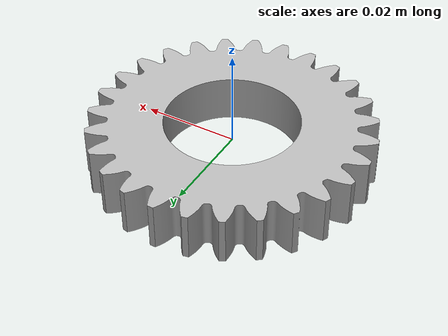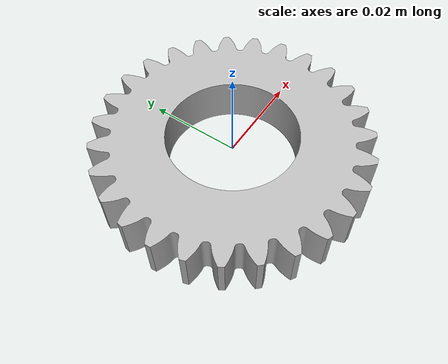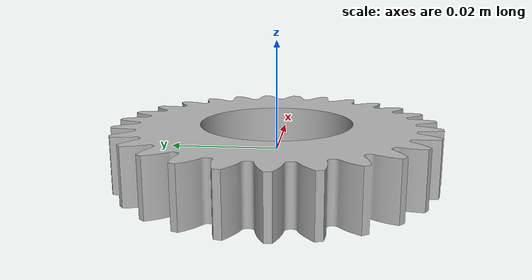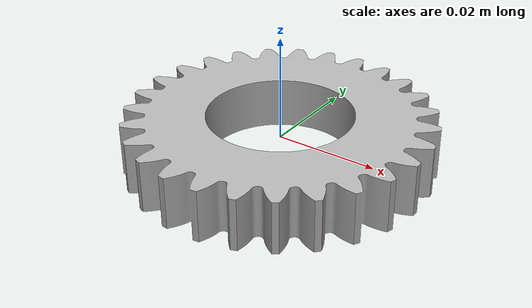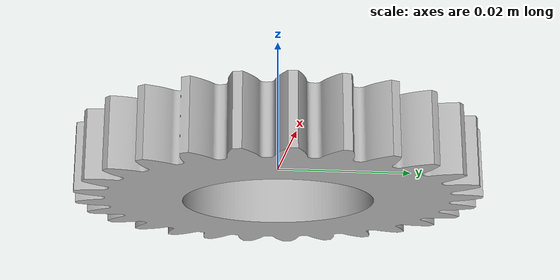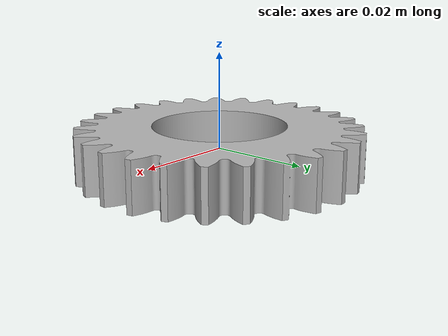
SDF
<?xml version="1.0" ?>
<sdf version="1.4">
    <model name="challenge_satellite_gear1">
    <static>false</static>
    <link name="link">
        <pose>0 0 0 0 0 0</pose>
        <collision name="collision">
            <geometry>
                <mesh>
                    <uri>model://challenge_satellite_gear1/mesh/challenge_satellite_gear1.stl</uri>
                    <scale>0.001 0.001 0.001</scale>
                </mesh>
            </geometry>
        </collision>
        <visual name="visual">
            <geometry>
                <mesh>
                    <uri>model://challenge_satellite_gear1/mesh/challenge_satellite_gear1.stl</uri>
                    <scale>0.001 0.001 0.001</scale>
                </mesh>
            </geometry>
        </visual>
        </link>
    </model>
</sdf>
